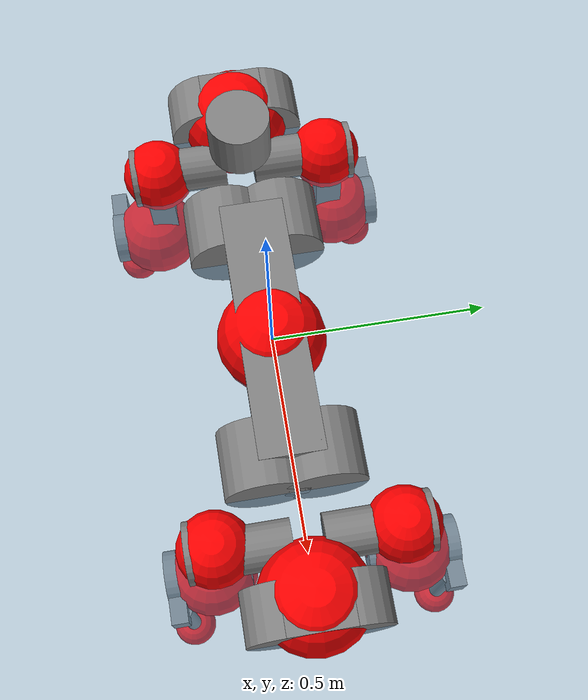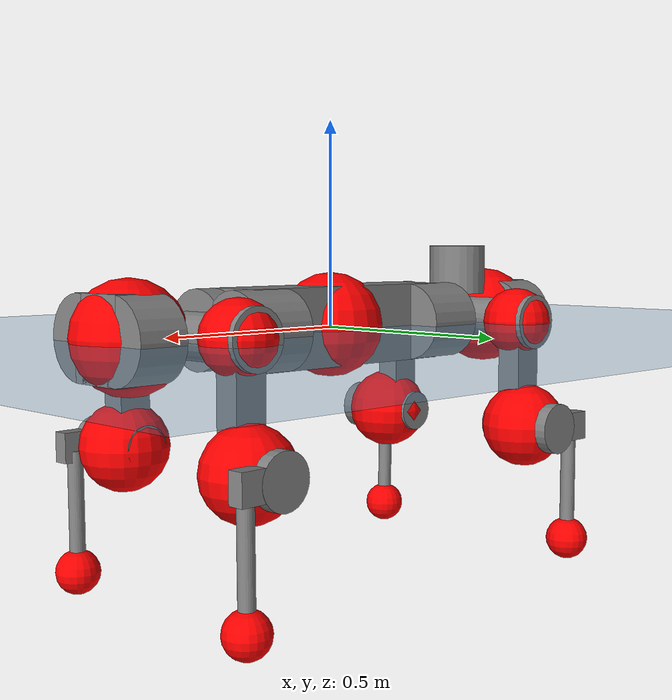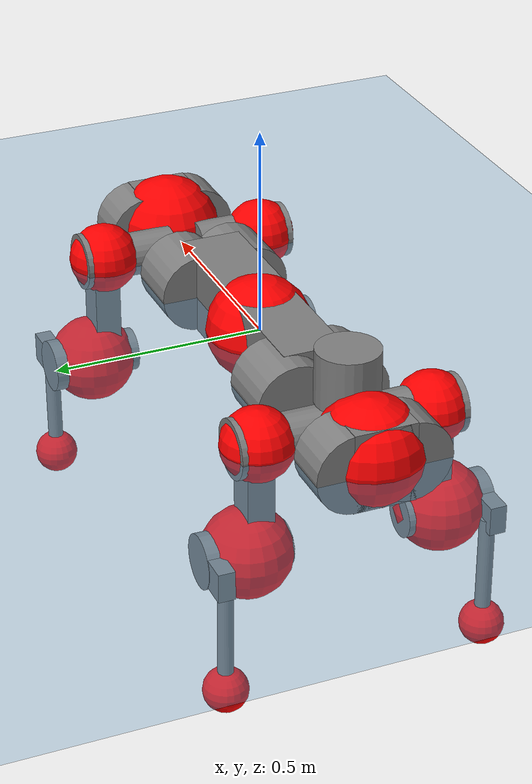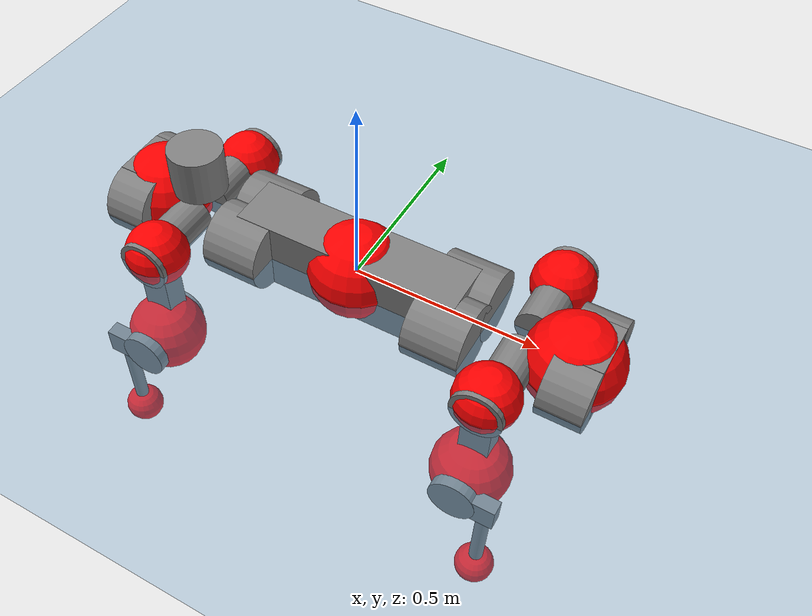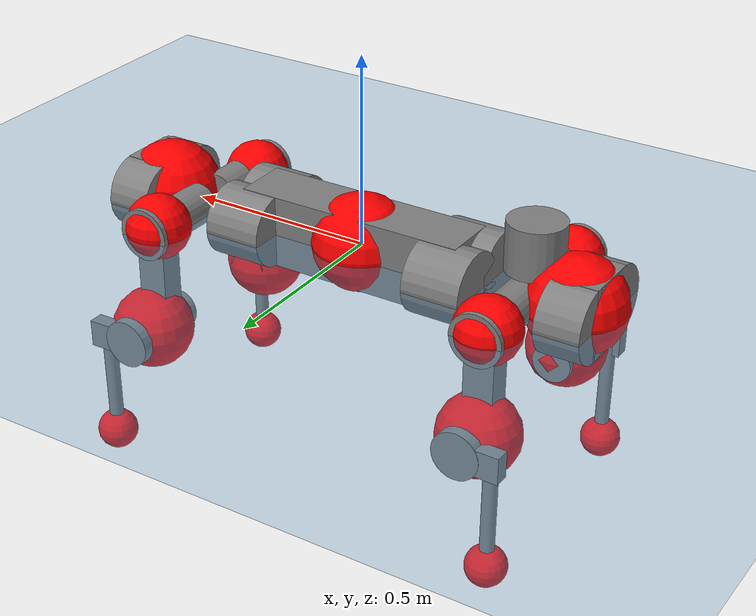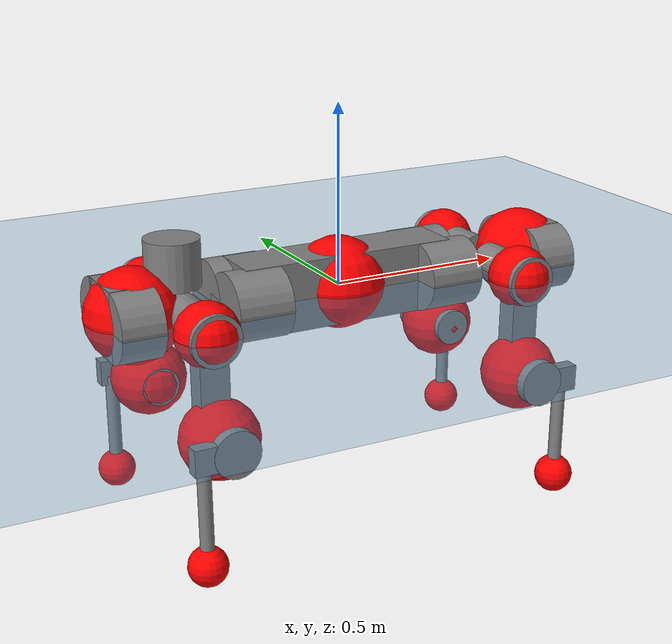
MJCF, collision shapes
<mujoco model="anymal_c">
  <compiler angle="radian" assetdir="assets" balanceinertia="true" inertiafromgeom="false"/>

  <option timestep="0.005" density="1.2" viscosity="2e-05"/>

  <size nkey="1"/>

  <visual>
    <quality shadowsize="8192"/>
    <map shadowclip="0.5"/>
  </visual>

  <default>
    <default class="/">
      <material specular="0" shininess="0.25"/>
      <geom contype="0" conaffinity="0" group="1" solref="-1000 -80"/>
      <site size="0.01 0.005 0.005" group="5"/>
      <general forcelimited="true" forcerange="-80 80" biastype="affine" gainprm="80" biasprm="0 -80 -2"/>
      <default class="anymal_c">
        <joint armature="0.01" damping="0.01" frictionloss="0.1"/>
        <default class="visual">
          <geom type="mesh" group="2"/>
          <default class="visual_zflip"/>
        </default>
        <default class="collision">
          <geom type="cylinder" group="3"/>
          <default class="foot">
            <geom size="0.03 0 0" type="sphere" condim="6" priority="1" friction="0.8 0.02 0.01" solimp="0.015 1 0.03"/>
          </default>
        </default>
      </default>
      <default class="reward_collision_sphere">
        <geom group="5" rgba="1 0 0 1"/>
      </default>
    </default>
  </default>

  <asset>
    <texture type="skybox" colorspace="auto" name="//unnamed_texture_0" builtin="gradient" rgb1="0.95 0.95 0.95" rgb2="0.95 0.95 0.95" width="100" height="600"/>
    <texture type="2d" colorspace="auto" name="texplane" builtin="checker" rgb1="0.345 0.575 0.748" rgb2="0.345 0.575 0.748" markrgb="1 1 1" width="512" height="512"/>
    <texture type="2d" colorspace="linear" name="base" file="base.png"/>
    <texture type="2d" colorspace="linear" name="top_shell" file="top_shell.png"/>
    <texture type="2d" colorspace="linear" name="bottom_shell" file="bottom_shell.png"/>
    <texture type="2d" colorspace="linear" name="remote" file="remote.png"/>
    <texture type="2d" colorspace="linear" name="hatch" file="hatch.png"/>
    <texture type="2d" colorspace="linear" name="handle" file="handle.png"/>
    <texture type="2d" colorspace="linear" name="face" file="face.png"/>
    <texture type="2d" colorspace="linear" name="battery" file="battery.png"/>
    <texture type="2d" colorspace="linear" name="lidar_cage" file="lidar_cage.png"/>
    <texture type="2d" colorspace="linear" name="depth_camera" file="depth_camera.png"/>
    <texture type="2d" colorspace="linear" name="wide_angle_camera" file="wide_angle_camera.png"/>
    <texture type="2d" colorspace="linear" name="lidar" file="lidar.png"/>
    <texture type="2d" colorspace="linear" name="drive" file="drive.png"/>
    <texture type="2d" colorspace="linear" name="hip_l" file="hip_l.png"/>
    <texture type="2d" colorspace="linear" name="shank_l" file="shank_l.png"/>
    <texture type="2d" colorspace="linear" name="foot" file="foot.png"/>
    <texture type="2d" colorspace="linear" name="thigh" file="thigh.png"/>
    <texture type="2d" colorspace="linear" name="shank_r" file="shank_r.png"/>
    <texture type="2d" colorspace="linear" name="hip_r" file="hip_r.png"/>
    <material name="MatPlane" class="/" texture="texplane" texuniform="true" texrepeat="2 2" specular="0.9" shininess="0.5"/>
    <material name="black_plastic" class="/" rgba="0.007 0.007 0.007 1"/>
    <material name="green" class="/" rgba="0.052 0.178 0.033 1"/>
    <material name="red" class="/" rgba="0.178 0.006 0.005 1"/>
    <material name="yellow" class="/" rgba="0.178 0.119 0.006 1"/>
    <material name="lwl" class="/" rgba="0.8 0.8 0.8 1"/>
    <material name="base" class="/" texture="base"/>
    <material name="top_shell" class="/" texture="top_shell"/>
    <material name="bottom_shell" class="/" texture="bottom_shell"/>
    <material name="hip_l" class="/" texture="hip_l"/>
    <material name="thigh" class="/" texture="thigh"/>
    <material name="shank_l" class="/" texture="shank_l"/>
    <material name="foot" class="/" texture="foot"/>
    <material name="hip_r" class="/" texture="hip_r"/>
    <material name="shank" class="/" texture="shank_r"/>
    <material name="hatch" class="/" texture="hatch"/>
    <material name="remote" class="/" texture="remote"/>
    <material name="handle" class="/" texture="handle"/>
    <material name="face" class="/" texture="face"/>
    <material name="depth_camera" class="/" texture="depth_camera"/>
    <material name="wide_angle_camera" class="/" texture="wide_angle_camera"/>
    <material name="battery" class="/" texture="battery"/>
    <material name="lidar_cage" class="/" texture="lidar_cage"/>
    <material name="lidar" class="/" texture="lidar"/>
    <material name="drive" class="/" texture="drive"/>
    <mesh name="base_0" class="/" file="base_0.obj"/>
    <mesh name="base_1" class="/" file="base_1.obj"/>
    <mesh name="base_2" class="/" file="base_2.obj"/>
    <mesh name="base_3" class="/" file="base_3.obj"/>
    <mesh name="base_4" class="/" file="base_4.obj"/>
    <mesh name="base_5" class="/" file="base_5.obj"/>
    <mesh name="top_shell" class="/" file="top_shell.obj"/>
    <mesh name="bottom_shell" class="/" file="bottom_shell.obj"/>
    <mesh name="remote" class="/" file="remote.obj"/>
    <mesh name="handle" class="/" file="handle.obj"/>
    <mesh name="face" class="/" file="face.obj"/>
    <mesh name="wide_angle_camera" class="/" file="wide_angle_camera.obj"/>
    <mesh name="depth_camera" class="/" file="depth_camera.obj"/>
    <mesh name="battery" class="/" file="battery.obj"/>
    <mesh name="lidar_cage" class="/" file="lidar_cage.obj"/>
    <mesh name="lidar" class="/" file="lidar.obj"/>
    <mesh name="drive" class="/" file="drive.obj"/>
    <mesh name="hip_l" class="/" file="hip_l.obj"/>
    <mesh name="thigh" class="/" file="thigh.obj"/>
    <mesh name="shank_l" class="/" file="shank_l.obj"/>
    <mesh name="foot" class="/" file="foot.obj"/>
    <mesh name="hip_r" class="/" file="hip_r.obj"/>
    <mesh name="hatch" class="/" file="hatch.obj"/>
    <mesh name="shank_r" class="/" file="shank_r.obj"/>
  </asset>

  <worldbody>
    <geom name="floor" class="/" size="100 100 0.125" type="plane" group="0" material="MatPlane"/>
    <light name="toplight_shadow" class="/" pos="0 0 5" dir="0.0990148 0.0990148 -0.990148" type="directional" ambient="0.04 0.04 0.04" diffuse="0.55 0.55 0.55" specular="0.12 0.12 0.12"/>
    <light name="toplight_fill" class="/" pos="0 0 5" dir="0.0990148 0.0990148 -0.990148" type="directional" castshadow="false" ambient="0.04 0.04 0.04" diffuse="0.3 0.3 0.3" specular="0.08 0.08 0.08"/>
    <body name="trunk" childclass="anymal_c" pos="-5.4927e-05 -0.000312315 0.00710072" quat="1 0.00071782 0.000110563 0.000276179">
      <inertial pos="0.00436434 -0.010905 0.0393129" quat="0.499098 0.499877 0.500516 0.500507" mass="24.0734" diaginertia="2.38494 0.449967 0.168984"/>
      <joint name="//unnamed_joint_0" type="free" armature="0" damping="0" frictionloss="0"/>
      <geom name="//unnamed_geom_1" class="visual" material="green" mesh="base_0"/>
      <geom name="//unnamed_geom_2" class="visual" material="yellow" mesh="base_1"/>
      <geom name="//unnamed_geom_3" class="visual" material="red" mesh="base_2"/>
      <geom name="//unnamed_geom_4" class="visual" material="black_plastic" mesh="base_3"/>
      <geom name="//unnamed_geom_5" class="visual" material="lwl" mesh="base_4"/>
      <geom name="//unnamed_geom_6" class="visual" material="base" mesh="base_5"/>
      <geom name="trunk_1" class="collision" size="0.308344 0.0744278 0.0956929" type="box"/>
      <geom name="trunk_2" class="collision" size="0.0956929 0.077086" pos="0.287211 0.0647301 0" quat="0.707107 0 0.707107 0"/>
      <geom name="trunk_3" class="collision" size="0.0956929 0.077086" pos="-0.287211 0.0647301 0" quat="0.707107 0 0.707107 0"/>
      <geom name="trunk_4" class="collision" size="0.0956929 0.077086" pos="0.287211 -0.0647301 0" quat="0.707107 0 0.707107 0"/>
      <geom name="trunk_5" class="collision" size="0.0956929 0.077086" pos="-0.287211 -0.0647301 0" quat="0.707107 0 0.707107 0"/>
      <geom name="//unnamed_geom_12" class="visual" material="top_shell" mesh="top_shell"/>
      <geom name="//unnamed_geom_13" class="visual" material="bottom_shell" mesh="bottom_shell"/>
      <geom name="//unnamed_geom_14" class="visual" material="remote" mesh="remote"/>
      <geom name="//unnamed_geom_15" class="visual" material="handle" mesh="handle"/>
      <geom name="//unnamed_geom_16" class="visual" pos="0.547352 0 0" quat="1 0 0 0" material="face" mesh="face"/>
      <geom name="trunk_6" class="collision" size="0.058479 0.0744278 0.0956929" pos="0.61998 0 0" type="box"/>
      <geom name="//unnamed_geom_18" class="collision" size="0.0956929 0.058479" pos="0.61998 0.0647301 0" quat="0.707107 0 0.707107 0"/>
      <geom name="//unnamed_geom_19" class="collision" size="0.0956929 0.058479" pos="0.61998 -0.0647301 0" quat="0.707107 0 0.707107 0"/>
      <geom name="//unnamed_geom_20" class="visual" pos="0.609599 0 -0.0247231" quat="0.965926 0 0.258819 0" material="depth_camera" mesh="depth_camera"/>
      <geom name="//unnamed_geom_21" class="visual" pos="0.677422 0 0.0141397" material="wide_angle_camera" mesh="wide_angle_camera"/>
      <geom name="//unnamed_geom_22" class="visual_zflip" pos="-0.547352 0 0" quat="0 0 0 1" material="face" mesh="face"/>
      <geom name="trunk_7" class="collision" size="0.058479 0.0744278 0.0956929" pos="-0.61998 0 0" quat="0 0 0 1" type="box"/>
      <geom name="//unnamed_geom_24" class="collision" size="0.0956929 0.058479" pos="-0.61998 -0.0647301 0" quat="0 -0.707107 0 0.707107"/>
      <geom name="//unnamed_geom_25" class="collision" size="0.0956929 0.058479" pos="-0.61998 0.0647301 0" quat="0 -0.707107 0 0.707107"/>
      <geom name="//unnamed_geom_26" class="visual" pos="-0.609599 0 -0.0247231" quat="0 -0.258819 0 0.965926" material="depth_camera" mesh="depth_camera"/>
      <geom name="//unnamed_geom_27" class="visual_zflip" pos="-0.677422 0 0.0141397" quat="0 0 0 1" material="wide_angle_camera" mesh="wide_angle_camera"/>
      <geom name="//unnamed_geom_28" class="visual" material="battery" mesh="battery"/>
      <geom name="//unnamed_geom_29" class="visual" pos="0 0.0654945 0.0302962" quat="0.683013 -0.183013 0.183013 0.683013" material="depth_camera" mesh="depth_camera"/>
      <geom name="//unnamed_geom_30" class="visual" pos="0 -0.0654945 0.0302962" quat="0.683013 0.183013 0.183013 -0.683013" material="depth_camera" mesh="depth_camera"/>
      <geom name="//unnamed_geom_31" class="visual" pos="-0.480666 0 0.0694235" quat="1 0 0 0" material="lidar_cage" mesh="lidar_cage"/>
      <geom name="trunk_8" class="collision" size="0.0744278 0.0637953" pos="-0.480666 0 0.126096"/>
      <geom name="//unnamed_geom_33" class="visual" pos="-0.480666 -0.000155498 0.134313" quat="0.707107 0 0 -0.707107" material="lidar" mesh="lidar"/>
      <geom name="//unnamed_geom_34" class="visual" pos="0.396021 0.0961774 -3.41942e-10" quat="0.258819 0.965926 0 0" material="drive" mesh="drive"/>
      <geom name="//unnamed_geom_35" class="visual" pos="0.396021 -0.0961774 3.41942e-10" quat="0.258819 -0.965926 0 0" material="drive" mesh="drive"/>
      <geom name="//unnamed_geom_36" class="visual" pos="-0.396021 0.0961774 3.41942e-10" quat="0 0 0.965926 -0.258819" material="drive" mesh="drive"/>
      <geom name="//unnamed_geom_37" class="visual" pos="-0.396021 -0.0961774 -3.41942e-10" quat="0 0 -0.965926 -0.258819" material="drive" mesh="drive"/>
      <geom name="//unnamed_geom_38" class="visual" pos="0.153179 0 0.0689513" quat="1 0 0 0" material="hatch" mesh="hatch"/>
      <geom name="//unnamed_geom_39" class="reward_collision_sphere" size="0.127591"/>
      <geom name="//unnamed_geom_40" class="reward_collision_sphere" size="0.127591" pos="0.59423 0 0"/>
      <geom name="//unnamed_geom_41" class="reward_collision_sphere" size="0.127591" pos="-0.59423 0 0"/>
      <site name="imu" pos="0.315297 0.0332739 0.0286737" size="0.0106325"/>
      <camera name="track" pos="0 -1.84943 0" quat="0.707107 0.707107 0 0" mode="trackcom"/>
      <camera name="ego_camera" pos="0.59423 0 -0.0377815" quat="-0.5 -0.5 0.5 0.5"/>
      <body name="LF_HIP" pos="0.394978 0.102159 0.000622156" quat="0.258408 0.966036 -0.000130227 -0.000658451">
        <inertial pos="0.084115 -0.0154264 -0.00301501" quat="-0.128056 0.710018 -0.134912 0.679172" mass="3.49023" diaginertia="0.0239382 0.00361503 0.00236419"/>
        <joint name="LF_HAA" pos="0 0 0" axis="1 -0.000676782 0.000291058" range="-0.645192 0.499827" armature="0.00726961" damping="0" frictionloss="0.153111"/>
        <geom name="//unnamed_geom_42" class="visual" pos="0 -2.01149e-05 3.30386e-06" quat="0.258819 -0.965926 0 0" material="hip_l" mesh="hip_l"/>
        <geom name="//unnamed_geom_43" class="visual" pos="0.0790987 -0.0906406 -0.052478" quat="0.183013 -0.683013 0.683013 0.183013" material="drive" mesh="drive"/>
        <geom name="//unnamed_geom_44" class="collision" size="0.0531627 0.0744278" pos="0.0790986 -0.0110594 -0.00652203" quat="-0.353553 -0.612372 0.612372 -0.353553"/>
        <body name="LF_THIGH" pos="0.0793743 -0.0676106 -0.0433016" quat="0.183172 -0.68295 0.68312 0.182686">
          <inertial pos="0.039437 -0.00125799 -0.22709" quat="0.99275 -0.00476219 -0.0783085 0.091064" mass="4.06856" diaginertia="0.118158 0.0203843 0.00403999"/>
          <joint name="LF_HFE" pos="0 0 0" axis="0.999805 0.00291617 0.0195525" stiffness="0.00984753" range="-3.01332 3.06573" armature="0.0095012" damping="0.00782576" frictionloss="0.110398"/>
          <geom name="//unnamed_geom_45" class="visual" pos="0.00787479 1.24088e-05 0" quat="0.707107 0 0 -0.707107" material="thigh" mesh="thigh"/>
          <geom name="//unnamed_geom_46" class="collision" size="0.0691116 0.0425302" pos="0.0528205 0 0" quat="0.5 0.5 -0.5 -0.5"/>
          <geom name="//unnamed_geom_47" class="collision" size="0.0398721 0.0318976 0.150253" pos="0.0396153 0 -0.133476" quat="0.707107 0 0 -0.707107" type="box"/>
          <geom name="//unnamed_geom_48" class="visual" pos="0.132447 0 -0.269193" quat="1 0 0 0" material="drive" mesh="drive"/>
          <geom name="//unnamed_geom_49" class="collision" size="0.0531627 0.0744278" pos="0.0400115 0 -0.269193" quat="0.707107 0 0.707107 0"/>
          <geom name="//unnamed_geom_50" class="reward_collision_sphere" size="0.0850604" pos="0.0330128 0 0"/>
          <body name="LF_SHANK" pos="0.136172 -0.00693082 -0.277015" quat="0.999987 0.00467664 0.00205254 0.000889246">
            <inertial pos="0.00608289 -0.0567297 -0.0771472" quat="0.992921 -0.115988 -0.00104317 -0.0255703" mass="0.801876" diaginertia="0.040296 0.00648052 0.000934042"/>
            <joint name="LF_KFE" pos="0 0 0" axis="0.999975 0.00389532 0.00583809" stiffness="0.00466524" range="-3.1323 3.14726" armature="0.012881" damping="0" frictionloss="0.144233"/>
            <geom name="//unnamed_geom_51" class="visual" pos="0.0025678 0.0136916 0" quat="0.707107 0 0 -0.707107" material="shank_l" mesh="shank_l"/>
            <geom name="LF_kfe_act" class="collision" size="0.0637953 0.0212651" pos="0.0264102 0 0" quat="0.5 0.5 -0.5 -0.5"/>
            <geom name="//unnamed_geom_53" class="collision" size="0.0611361 0.0358849 0.0202018" pos="0.0264102 -0.0531702 0" quat="0.5 0.5 -0.5 -0.5" type="box"/>
            <geom name="//unnamed_geom_54" class="visual" pos="0.0172321 -0.0769165 -0.319225" quat="0.382683 0 0 -0.92388" material="foot" mesh="foot"/>
            <geom name="LF_calf" class="collision" size="0.018607 0.150187" pos="0.0172327 -0.0813287 -0.159613" quat="0.707107 0 0 -0.707107"/>
            <geom name="LF_foot" class="foot" size="0.0218836" pos="0.0172327 -0.0813287 -0.297973" quat="0.707107 0 0 -0.707107"/>
            <geom name="//unnamed_geom_57" class="reward_collision_sphere" size="0.106325" pos="-0.0660256 0 0"/>
            <geom name="//unnamed_geom_58" class="reward_collision_sphere" size="0.0531627" pos="0.0172327 -0.0813287 -0.297973"/>
            <site name="LF_foot" class="foot" pos="0.0172327 -0.0813287 -0.297973" quat="0.707107 0 0 -0.707107" size="0.0106325"/>
          </body>
        </body>
      </body>
      <body name="RF_HIP" pos="0.393554 -0.0905837 -0.000941766" quat="0.258527 -0.965995 -0.00105384 0.00413381">
        <inertial pos="0.073657 0.0143486 -0.00765792" quat="0.140869 0.677332 0.131806 0.709933" mass="3.65507" diaginertia="0.0260434 0.00394496 0.0024322"/>
        <joint name="RF_HAA" pos="0 0 0" axis="0.999977 -0.00606307 -0.00304355" range="-0.649748 0.925411" armature="0.00974455" damping="0.00072858" frictionloss="0.139193"/>
        <geom name="//unnamed_geom_59" class="visual" pos="0 2.01147e-05 3.30385e-06" quat="0.258819 0.965926 0 0" material="hip_r" mesh="hip_r"/>
        <geom name="//unnamed_geom_60" class="visual" pos="0.0790986 0.0906406 -0.052478" quat="0.183013 0.683013 0.683013 -0.183013" material="drive" mesh="drive"/>
        <geom name="//unnamed_geom_61" class="collision" size="0.0531627 0.0744278" pos="0.0790986 0.0110594 -0.00652203" quat="-0.353553 0.612372 0.612372 0.353553"/>
        <body name="RF_THIGH" pos="0.0674087 0.0618334 -0.0381296" quat="0.182487 0.682989 0.683361 -0.182325">
          <inertial pos="0.0424345 -0.000222956 -0.232024" quat="0.993274 -0.00874298 -0.0798404 0.0834026" mass="3.31279" diaginertia="0.116561 0.0179743 0.00265323"/>
          <joint name="RF_HFE" pos="0 0 0" axis="0.998588 0.0450287 -0.028179" stiffness="0.00532256" range="-3.38431 3.34628" armature="0.0114973" damping="0.0453424" frictionloss="0.112255"/>
          <geom name="//unnamed_geom_62" class="visual" pos="0.00787479 1.24088e-05 0" quat="0.707107 0 0 -0.707107" material="thigh" mesh="thigh"/>
          <geom name="//unnamed_geom_63" class="collision" size="0.0691116 0.0425302" pos="0.0528205 0 0" quat="0.5 0.5 0.5 0.5"/>
          <geom name="//unnamed_geom_64" class="collision" size="0.0398721 0.0318976 0.150253" pos="0.0396153 0 -0.133476" quat="0.707107 0 0 0.707107" type="box"/>
          <geom name="//unnamed_geom_65" class="visual" pos="0.132447 0 -0.269193" quat="1 0 0 0" material="drive" mesh="drive"/>
          <geom name="//unnamed_geom_66" class="collision" size="0.0531627 0.0744278" pos="0.0400115 0 -0.269193" quat="0.707107 0 0.707107 0"/>
          <geom name="//unnamed_geom_67" class="reward_collision_sphere" size="0.0850604" pos="0.0330128 0 0"/>
          <body name="RF_SHANK" pos="0.121768 -0.000714004 -0.27394" quat="1 -0.000235768 -7.55477e-05 -8.33685e-05">
            <inertial pos="0.0103959 0.05774 -0.0876973" quat="0.993727 0.107958 -0.00530732 0.0286867" mass="0.8313" diaginertia="0.0385445 0.00621687 0.00083738"/>
            <joint name="RF_KFE" pos="0 0 0" axis="0.998091 0.0382885 -0.0484527" stiffness="0.0134303" range="-3.17522 3.31533" armature="0.0112337" damping="0.00799265" frictionloss="0.171389"/>
            <geom name="//unnamed_geom_68" class="visual" pos="0.00256778 -0.0136916 0" quat="0.707107 0 0 0.707107" material="shank" mesh="shank_r"/>
            <geom name="RF_kfe_act" class="collision" size="0.0637953 0.0212651" pos="0.0264102 0 0" quat="0.5 0.5 0.5 0.5"/>
            <geom name="//unnamed_geom_70" class="collision" size="0.0611361 0.0358849 0.0202018" pos="0.0264102 0.0531702 0" quat="0.5 0.5 0.5 0.5" type="box"/>
            <geom name="//unnamed_geom_71" class="visual" pos="0.0172333 0.0769165 -0.319225" quat="0.382683 0 0 0.92388" material="foot" mesh="foot"/>
            <geom name="RF_calf" class="collision" size="0.018607 0.150187" pos="0.0172327 0.0813287 -0.159613" quat="0.707107 0 0 0.707107"/>
            <geom name="RF_foot" class="foot" size="0.0304754" pos="0.0172327 0.0813287 -0.297973" quat="0.707107 0 0 0.707107"/>
            <geom name="//unnamed_geom_74" class="reward_collision_sphere" size="0.106325" pos="-0.0660256 0 0"/>
            <geom name="//unnamed_geom_75" class="reward_collision_sphere" size="0.0531627" pos="0.0172327 0.0813287 -0.297973"/>
            <site name="RF_foot" class="foot" pos="0.0172327 0.0813287 -0.297973" quat="0.707107 0 0 0.707107" size="0.0106325"/>
          </body>
        </body>
      </body>
      <body name="LH_HIP" pos="-0.39497 0.0888647 0.000777663" quat="-5.13296e-06 -0.000187112 0.965915 -0.25886">
        <inertial pos="0.0794354 0.0231206 -0.00809438" quat="0.170766 0.639683 0.109702 0.741357" mass="3.8612" diaginertia="0.0227397 0.00305765 0.00258989"/>
        <joint name="LH_HAA" pos="0 0 0" axis="0.999353 0.0161789 0.0321252" stiffness="0.0384125" range="-0.512396 0.808964" armature="0.0109509" damping="0.0390306" frictionloss="0.0812464"/>
        <geom name="//unnamed_geom_76" class="visual" pos="0 2.01147e-05 3.30385e-06" quat="-0.258819 -0.965926 0 0" material="hip_r" mesh="hip_r"/>
        <geom name="//unnamed_geom_77" class="visual" pos="0.0790986 0.0906406 -0.052478" quat="0.183013 0.683013 0.683013 -0.183013" material="drive" mesh="drive"/>
        <geom name="//unnamed_geom_78" class="collision" size="0.0531627 0.0744278" pos="0.0790986 0.0110594 -0.00652203" quat="-0.353553 0.612372 0.612372 0.353553"/>
        <body name="LH_THIGH" pos="0.0781897 0.0763155 -0.0380831" quat="0.183009 0.681326 0.684759 -0.182778">
          <inertial pos="0.043279 0.0069901 -0.231651" quat="0.990774 -0.00815317 -0.092586 0.0986344" mass="3.54535" diaginertia="0.106021 0.0186989 0.00258257"/>
          <joint name="LH_HFE" pos="0 0 0" axis="0.999988 -0.00310883 0.00372473" range="-3.14684 3.16519" armature="0.0111252" damping="0.0170253" frictionloss="0.107038"/>
          <geom name="//unnamed_geom_79" class="visual" pos="0.00787479 1.24088e-05 0" quat="0.707107 0 0 -0.707107" material="thigh" mesh="thigh"/>
          <geom name="//unnamed_geom_80" class="collision" size="0.0691116 0.0425302" pos="0.0528205 0 0" quat="0.5 0.5 -0.5 -0.5"/>
          <geom name="//unnamed_geom_81" class="collision" size="0.0398721 0.0318976 0.150253" pos="0.0396153 0 -0.133476" quat="0.707107 0 0 -0.707107" type="box"/>
          <geom name="//unnamed_geom_82" class="visual" pos="0.132447 0 -0.269193" quat="1 0 0 0" material="drive" mesh="drive"/>
          <geom name="//unnamed_geom_83" class="collision" size="0.0531627 0.0744278" pos="0.0400115 0 -0.269193" quat="0.707107 0 0.707107 0"/>
          <geom name="//unnamed_geom_84" class="reward_collision_sphere" size="0.0850604" pos="0.0330128 0 0"/>
          <body name="LH_SHANK" pos="0.124779 0.00135166 -0.268918" quat="0.999991 -0.00174263 -0.000281497 -0.00394626">
            <inertial pos="-0.00074804 0.0591591 -0.0694949" quat="0.99298 0.115424 -0.00110326 0.0258371" mass="0.664992" diaginertia="0.0351984 0.00457944 0.000593306"/>
            <joint name="LH_KFE" pos="0 0 0" axis="0.999565 -0.00763334 0.0284981" range="-3.15573 3.39782" armature="0.0105109" damping="0" frictionloss="0.0831251"/>
            <geom name="//unnamed_geom_85" class="visual" pos="0.00256778 -0.0136916 0" quat="-0.707107 0 0 -0.707107" material="shank" mesh="shank_r"/>
            <geom name="LH_kfe_act" class="collision" size="0.0637953 0.0212651" pos="0.0264102 0 0" quat="0.5 0.5 -0.5 -0.5"/>
            <geom name="//unnamed_geom_87" class="collision" size="0.0611361 0.0358849 0.0202018" pos="0.0264102 0.0531702 0" quat="0.5 0.5 -0.5 -0.5" type="box"/>
            <geom name="//unnamed_geom_88" class="visual" pos="0.0172333 0.0769165 -0.319225" quat="-0.382683 0 0 -0.92388" material="foot" mesh="foot"/>
            <geom name="LH_calf" class="collision" size="0.018607 0.150187" pos="0.0172327 0.0813287 -0.159613" quat="0.707107 0 0 -0.707107"/>
            <geom name="LH_foot" class="foot" size="0.0448781" pos="0.0172327 0.0813287 -0.297973" quat="0.707107 0 0 -0.707107"/>
            <geom name="//unnamed_geom_91" class="reward_collision_sphere" size="0.106325" pos="-0.0660256 0 0"/>
            <geom name="//unnamed_geom_92" class="reward_collision_sphere" size="0.0531627" pos="0.0172327 0.0813287 -0.297973"/>
            <site name="LH_foot" class="foot" pos="0.0172327 0.0813287 -0.297973" quat="0.707107 0 0 -0.707107" size="0.0106325"/>
          </body>
        </body>
      </body>
      <body name="RH_HIP" pos="-0.397521 -0.104317 0.00342463" quat="-0.00461355 -0.000144802 -0.96612 -0.258054">
        <inertial pos="0.0738903 -0.018595 -0.00397096" quat="-0.0940918 0.742702 -0.106183 0.65442" mass="3.68368" diaginertia="0.0234946 0.0037915 0.00266422"/>
        <joint name="RH_HAA" pos="0 0 0" axis="0.999917 -0.00952388 -0.00872083" stiffness="0.00914922" range="-0.53788 0.465944" armature="0.0161268" damping="0.0248483" frictionloss="0.0743349"/>
        <geom name="//unnamed_geom_93" class="visual" pos="0 -2.01149e-05 3.30386e-06" quat="-0.258819 0.965926 0 0" material="hip_l" mesh="hip_l"/>
        <geom name="//unnamed_geom_94" class="visual" pos="0.0790987 -0.0906406 -0.052478" quat="-0.183013 0.683013 -0.683013 -0.183013" material="drive" mesh="drive"/>
        <geom name="//unnamed_geom_95" class="collision" size="0.0531627 0.0744278" pos="0.0790986 -0.0110594 -0.00652203" quat="0.353553 0.612372 -0.612372 0.353553"/>
        <body name="RH_THIGH" pos="0.0788124 -0.0650927 -0.0286548" quat="-0.183073 0.682994 -0.682994 -0.183093">
          <inertial pos="0.0408962 -0.0124422 -0.237409" quat="0.992189 -0.0317671 -0.0585883 0.105446" mass="4.21214" diaginertia="0.138072 0.0228805 0.00359756"/>
          <joint name="RH_HFE" pos="0 0 0" axis="0.999516 0.0302909 0.00706887" range="-3.21103 3.34899" armature="0.00352071" damping="0.00461847" frictionloss="0.0945797"/>
          <geom name="//unnamed_geom_96" class="visual" pos="0.00787479 1.24088e-05 0" quat="0.707107 0 0 -0.707107" material="thigh" mesh="thigh"/>
          <geom name="//unnamed_geom_97" class="collision" size="0.0691116 0.0425302" pos="0.0528205 0 0" quat="0.5 0.5 0.5 0.5"/>
          <geom name="//unnamed_geom_98" class="collision" size="0.0398721 0.0318976 0.150253" pos="0.0396153 0 -0.133476" quat="0.707107 0 0 0.707107" type="box"/>
          <geom name="//unnamed_geom_99" class="visual" pos="0.132447 0 -0.269193" quat="1 0 0 0" material="drive" mesh="drive"/>
          <geom name="//unnamed_geom_100" class="collision" size="0.0531627 0.0744278" pos="0.0400115 0 -0.269193" quat="0.707107 0 0.707107 0"/>
          <geom name="//unnamed_geom_101" class="reward_collision_sphere" size="0.0850604" pos="0.0330128 0 0"/>
          <body name="RH_SHANK" pos="0.133494 0.00807116 -0.269088" quat="0.999993 0.00172327 -0.00242476 0.00220828">
            <inertial pos="0.00271919 -0.0580577 -0.0771463" quat="0.985101 -0.16625 0.0163211 -0.0408698" mass="0.841499" diaginertia="0.0428601 0.00677821 0.000750578"/>
            <joint name="RH_KFE" pos="0 0 0" axis="0.998734 0.0471279 -0.0175881" range="-3.30477 2.94565" armature="0.00995679" damping="0.00492516" frictionloss="0.106543"/>
            <geom name="//unnamed_geom_102" class="visual" pos="0.0025678 0.0136916 0" quat="0.707107 0 0 -0.707107" material="shank_l" mesh="shank_l"/>
            <geom name="RH_kfe_act" class="collision" size="0.0637953 0.0212651" pos="0.0264102 0 0" quat="0.5 0.5 0.5 0.5"/>
            <geom name="//unnamed_geom_104" class="collision" size="0.0611361 0.0358849 0.0202018" pos="0.0264102 -0.0531702 0" quat="0.5 0.5 0.5 0.5" type="box"/>
            <geom name="//unnamed_geom_105" class="visual" pos="0.0172321 -0.0769165 -0.319225" quat="0.382683 0 0 -0.92388" material="foot" mesh="foot"/>
            <geom name="RH_calf" class="collision" size="0.018607 0.150187" pos="0.0172327 -0.0813287 -0.159613" quat="0.707107 0 0 0.707107"/>
            <geom name="RH_foot" class="foot" size="0.0465351" pos="0.0172327 -0.0813287 -0.297973" quat="0.707107 0 0 0.707107"/>
            <geom name="//unnamed_geom_108" class="reward_collision_sphere" size="0.106325" pos="-0.0660256 0 0"/>
            <geom name="//unnamed_geom_109" class="reward_collision_sphere" size="0.0531627" pos="0.0172327 -0.0813287 -0.297973"/>
            <site name="RH_foot" class="foot" pos="0.0172327 -0.0813287 -0.297973" quat="0.707107 0 0 0.707107" size="0.0106325"/>
          </body>
        </body>
      </body>
    </body>
  </worldbody>

  <contact>
    <pair class="/" geom1="floor" geom2="LF_foot" name="//unnamed_contact_0"/>
    <pair class="/" geom1="floor" geom2="RF_foot" name="//unnamed_contact_1"/>
    <pair class="/" geom1="floor" geom2="LH_foot" name="//unnamed_contact_2"/>
    <pair class="/" geom1="floor" geom2="RH_foot" name="//unnamed_contact_3"/>
  </contact>

  <actuator>
    <general name="LF_HAA" class="/" joint="LF_HAA" forcerange="-101.787 101.787" gainprm="62.5624" biasprm="0 -62.5624 -1.93077"/>
    <general name="LF_HFE" class="/" joint="LF_HFE" forcerange="-123.744 123.744" gainprm="62.5624" biasprm="0 -62.5624 -1.93077"/>
    <general name="LF_KFE" class="/" joint="LF_KFE" forcerange="-80.4044 80.4044" gainprm="62.5624" biasprm="0 -62.5624 -1.93077"/>
    <general name="RF_HAA" class="/" joint="RF_HAA" forcerange="-91.7371 91.7371" gainprm="62.5624" biasprm="0 -62.5624 -1.93077"/>
    <general name="RF_HFE" class="/" joint="RF_HFE" forcerange="-76.4549 76.4549" gainprm="62.5624" biasprm="0 -62.5624 -1.93077"/>
    <general name="RF_KFE" class="/" joint="RF_KFE" forcerange="-98.1448 98.1448" gainprm="62.5624" biasprm="0 -62.5624 -1.93077"/>
    <general name="LH_HAA" class="/" joint="LH_HAA" forcerange="-64.5251 64.5251" gainprm="62.5624" biasprm="0 -62.5624 -1.93077"/>
    <general name="LH_HFE" class="/" joint="LH_HFE" forcerange="-85.8033 85.8033" gainprm="62.5624" biasprm="0 -62.5624 -1.93077"/>
    <general name="LH_KFE" class="/" joint="LH_KFE" forcerange="-100.5 100.5" gainprm="62.5624" biasprm="0 -62.5624 -1.93077"/>
    <general name="RH_HAA" class="/" joint="RH_HAA" forcerange="-122.953 122.953" gainprm="62.5624" biasprm="0 -62.5624 -1.93077"/>
    <general name="RH_HFE" class="/" joint="RH_HFE" forcerange="-86.4734 86.4734" gainprm="62.5624" biasprm="0 -62.5624 -1.93077"/>
    <general name="RH_KFE" class="/" joint="RH_KFE" forcerange="-88.0677 88.0677" gainprm="62.5624" biasprm="0 -62.5624 -1.93077"/>
  </actuator>

  <sensor>
    <gyro site="imu" name="imu_angular_velocity"/>
    <velocimeter site="imu" name="imu_linear_velocity"/>
    <framelinvel objtype="site" objname="LF_foot" name="LF_foot_global_linear_velocity"/>
    <framelinvel objtype="site" objname="RF_foot" name="RF_foot_global_linear_velocity"/>
    <framelinvel objtype="site" objname="LH_foot" name="LH_foot_global_linear_velocity"/>
    <framelinvel objtype="site" objname="RH_foot" name="RH_foot_global_linear_velocity"/>
  </sensor>

  <keyframe>
    <key name="home" qpos="0 0 0.55 1 0 0 0 0 0.4 -0.8 0 -0.4 0.8 0 -0.4 0.8 0 0.4 -0.8"/>
  </keyframe>
</mujoco>
